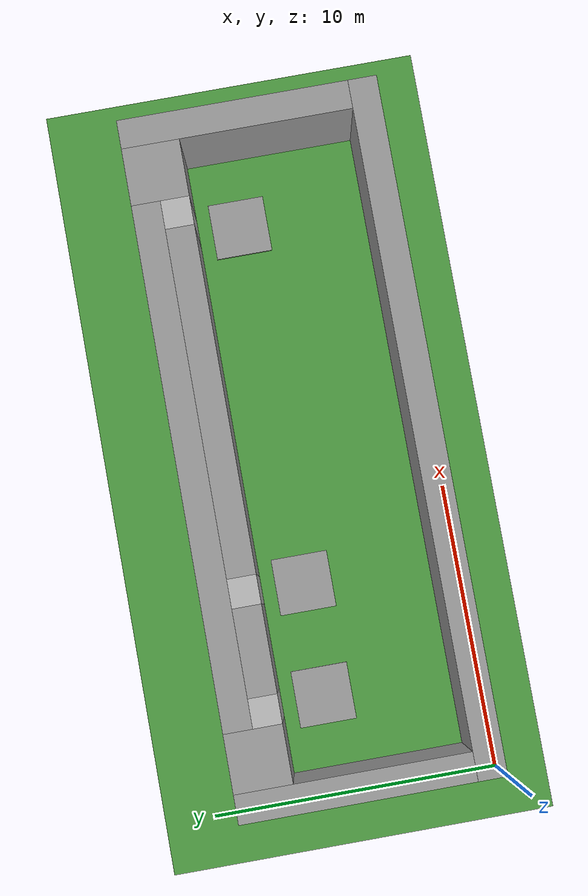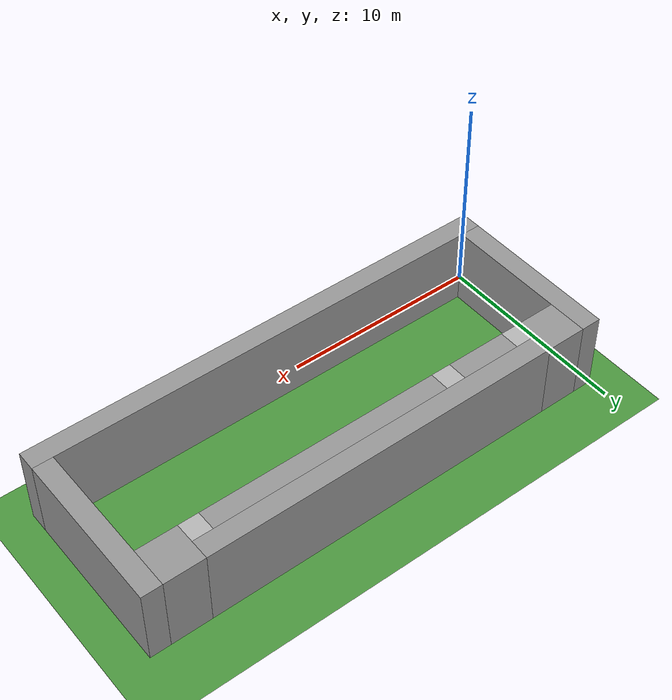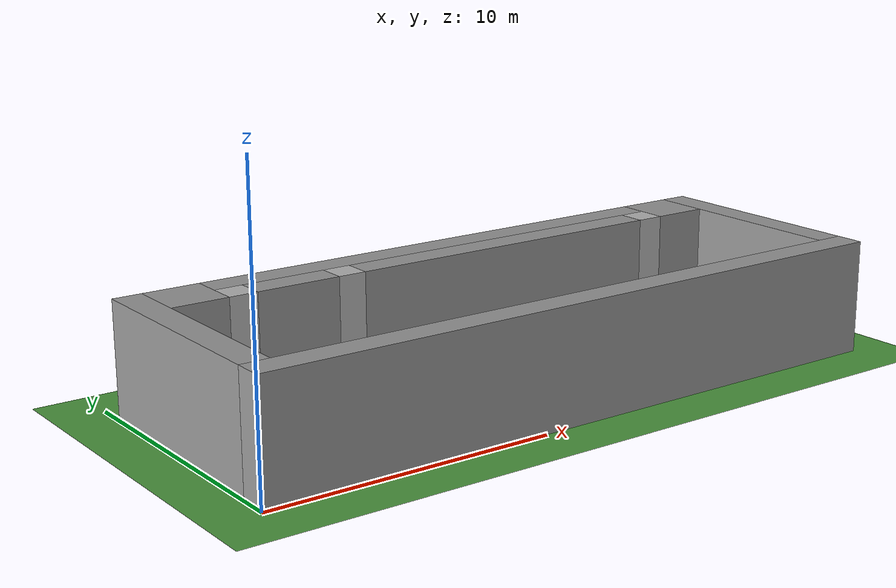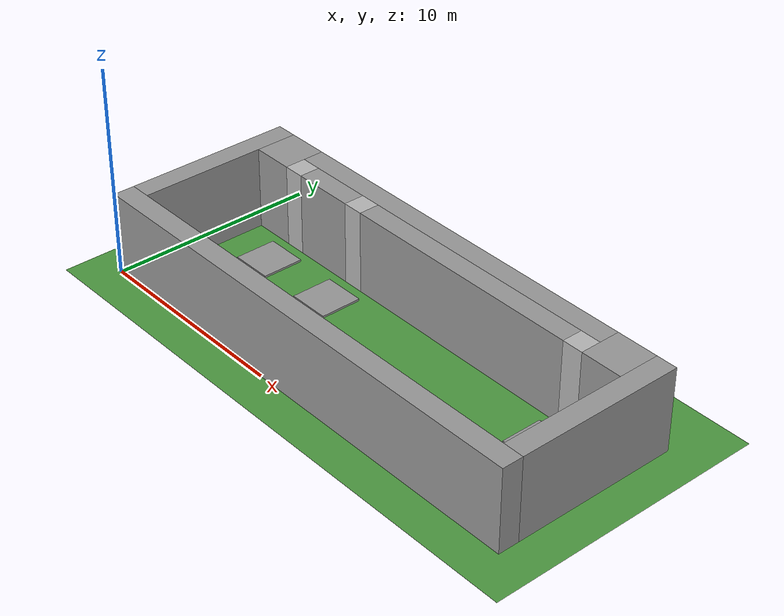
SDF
<sdf version="1.6">
 <world name="default">
  <light name="sun" type="directional">
   <pose>0 0 10 0 -0 0</pose>
   <diffuse>0.8 0.8 0.8 1</diffuse>
   <specular>0.1 0.1 0.1 1</specular>
   <attenuation>
    <range>1000</range>
    <constant>0.9</constant>
    <linear>0.01</linear>
    <quadratic>0.001</quadratic>
   </attenuation>
   <direction>-0.5 0.5 -1</direction>
  </light>
  <model name="ground_plane">
   <static>1</static>
   <link name="link">
    <collision name="collision">
     <geometry><plane><normal>0 0 1</normal><size>100 100</size></plane></geometry>
     <surface><friction><ode><mu>100</mu><mu2>50</mu2></ode></friction></surface>
    </collision>
    <visual name="visual">
     <cast_shadows>0</cast_shadows>
     <geometry><plane><normal>0 0 1</normal><size>100 100</size></plane></geometry>
     <material>
      <script><uri>file://media/materials/scripts/gazebo.material</uri><name>Gazebo/Grass</name></script>
     </material>
    </visual>
   </link>
  </model>
  <gravity>0 0 -9.8</gravity>
  <magnetic_field>6e-06 2.3e-05 -4.2e-05</magnetic_field>
  <atmosphere type="adiabatic"/>
  <physics name="default_physics" default="0" type="ode">
   <max_step_size>0.004</max_step_size>
   <real_time_factor>1</real_time_factor>
   <real_time_update_rate>250</real_time_update_rate>
  </physics>
  <scene><ambient>0.4 0.4 0.4 1</ambient><background>0.7 0.7 0.7 1</background><shadows>1</shadows></scene>
  <spherical_coordinates>
   <surface_model>EARTH_WGS84</surface_model>
   <latitude_deg>0</latitude_deg>
   <longitude_deg>0</longitude_deg>
   <elevation>0</elevation>
   <heading_deg>0</heading_deg>
  </spherical_coordinates>
  <model name="wall">
   <pose>12.000000 0.500000 2 0 0 0</pose>
   <static>1</static>
   <link name="wall-link">
    <collision name="collision"><geometry><box><size>24 1 4</size></box></geometry></collision>
    <visual name="visual">
     <geometry><box><size>24 1 4</size></box></geometry>
     <material>
      <script><name>Gazebo/Grey</name><uri>file://media/materials/scripts/gazebo.material</uri></script>
     </material>
    </visual>
    <gravity>0</gravity>
   </link>
  </model>
  <model name="wall">
   <pose>0.500000 5.000000 2 0 0 0</pose>
   <static>1</static>
   <link name="wall-link">
    <collision name="collision"><geometry><box><size>1 8 4</size></box></geometry></collision>
    <visual name="visual">
     <geometry><box><size>1 8 4</size></box></geometry>
     <material>
      <script><name>Gazebo/Grey</name><uri>file://media/materials/scripts/gazebo.material</uri></script>
     </material>
    </visual>
    <gravity>0</gravity>
   </link>
  </model>
  <model name="wall">
   <pose>23.500000 5.000000 2 0 0 0</pose>
   <static>1</static>
   <link name="wall-link">
    <collision name="collision"><geometry><box><size>1 8 4</size></box></geometry></collision>
    <visual name="visual">
     <geometry><box><size>1 8 4</size></box></geometry>
     <material>
      <script><name>Gazebo/Grey</name><uri>file://media/materials/scripts/gazebo.material</uri></script>
     </material>
    </visual>
    <gravity>0</gravity>
   </link>
  </model>
  <model name="wall">
   <pose>2.000000 8.000000 2 0 0 0</pose>
   <static>1</static>
   <link name="wall-link">
    <collision name="collision"><geometry><box><size>2 2 4</size></box></geometry></collision>
    <visual name="visual">
     <geometry><box><size>2 2 4</size></box></geometry>
     <material>
      <script><name>Gazebo/Grey</name><uri>file://media/materials/scripts/gazebo.material</uri></script>
     </material>
    </visual>
    <gravity>0</gravity>
   </link>
  </model>
  <model name="wall">
   <pose>5.500000 7.500000 2 0 0 0</pose>
   <static>1</static>
   <link name="wall-link">
    <collision name="collision"><geometry><box><size>3 1 4</size></box></geometry></collision>
    <visual name="visual">
     <geometry><box><size>3 1 4</size></box></geometry>
     <material>
      <script><name>Gazebo/Grey</name><uri>file://media/materials/scripts/gazebo.material</uri></script>
     </material>
    </visual>
    <gravity>0</gravity>
   </link>
  </model>
  <model name="wall">
   <pose>14.000000 7.500000 2 0 0 0</pose>
   <static>1</static>
   <link name="wall-link">
    <collision name="collision"><geometry><box><size>12 1 4</size></box></geometry></collision>
    <visual name="visual">
     <geometry><box><size>12 1 4</size></box></geometry>
     <material>
      <script><name>Gazebo/Grey</name><uri>file://media/materials/scripts/gazebo.material</uri></script>
     </material>
    </visual>
    <gravity>0</gravity>
   </link>
  </model>
  <model name="wall">
   <pose>22.000000 8.000000 2 0 0 0</pose>
   <static>1</static>
   <link name="wall-link">
    <collision name="collision"><geometry><box><size>2 2 4</size></box></geometry></collision>
    <visual name="visual">
     <geometry><box><size>2 2 4</size></box></geometry>
     <material>
      <script><name>Gazebo/Grey</name><uri>file://media/materials/scripts/gazebo.material</uri></script>
     </material>
    </visual>
    <gravity>0</gravity>
   </link>
  </model>
  <model name="wall">
   <pose>12.000000 8.500000 2 0 0 0</pose>
   <static>1</static>
   <link name="wall-link">
    <collision name="collision"><geometry><box><size>18 1 4</size></box></geometry></collision>
    <visual name="visual">
     <geometry><box><size>18 1 4</size></box></geometry>
     <material>
      <script><name>Gazebo/Grey</name><uri>file://media/materials/scripts/gazebo.material</uri></script>
     </material>
    </visual>
    <gravity>0</gravity>
   </link>
  </model>
  <model name="goal">
   <pose>3.5 5.5 0.05 0 -0 0</pose>
   <static>1</static>
   <link name="link">
    <collision name="collision"><geometry><box><size>2.0 2.0 0.1</size></box></geometry></collision>
    <visual name="visual">
     <geometry><box><size>2.0 2.0 0.1</size></box></geometry>
     <material>
      <script><name>Gazebo/Grey</name><uri>file://media/materials/scripts/gazebo.material</uri></script>
     </material>
    </visual>
   </link>
  </model>
  <model name="goal">
   <pose>7.5 5.5 0.05 0 -0 0</pose>
   <static>1</static>
   <link name="link">
    <collision name="collision"><geometry><box><size>2.0 2.0 0.1</size></box></geometry></collision>
    <visual name="visual">
     <geometry><box><size>2.0 2.0 0.1</size></box></geometry>
     <material>
      <script><name>Gazebo/Grey</name><uri>file://media/materials/scripts/gazebo.material</uri></script>
     </material>
    </visual>
   </link>
  </model>
  <model name="goal">
   <pose>20.5 5.5 0.05 0 -0 0</pose>
   <static>1</static>
   <link name="link">
    <collision name="collision"><geometry><box><size>2.0 2.0 0.1</size></box></geometry></collision>
    <visual name="visual">
     <geometry><box><size>2.0 2.0 0.1</size></box></geometry>
     <material>
      <script><name>Gazebo/Grey</name><uri>file://media/materials/scripts/gazebo.material</uri></script>
     </material>
    </visual>
   </link>
  </model>
  <include><uri>model://numberbox1</uri><pose>3.5 7.5 2 0 -0 0</pose></include>
  <include><uri>model://numberbox2</uri><pose>7.5 7.5 2 0 -0 0</pose></include>
  <include><uri>model://numberbox7</uri><pose>20.5 7.5 2 0 -0 0</pose></include>
 </world>
</sdf>

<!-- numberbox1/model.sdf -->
<sdf version="1.5">
  <model name="box">
    <static>false</static>
    <link name="base">
      <inertial>
        <mass>1</mass>
        <inertia>
          <ixx>0.166667</ixx>
          <ixy>0</ixy>
          <ixz>0</ixz>
          <iyy>0.166667</iyy>
          <iyz>0</iyz>
          <izz>0.166667</izz>
        </inertia>
      </inertial>
      <collision name="collision">
        <geometry>
            <box>
                <size>1 1 4</size>
            </box>
        </geometry>
      </collision>
      <visual name="visual">
        <geometry>
          <mesh>
            <uri>model://numberbox/meshes/number1.dae</uri>
          </mesh>
        </geometry>
      </visual>
    </link>
  </model>
</sdf>

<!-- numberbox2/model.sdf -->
<sdf version="1.5">
  <model name="box">
    <static>false</static>
    <link name="base">
      <inertial>
        <mass>1</mass>
        <inertia>
          <ixx>0.166667</ixx>
          <ixy>0</ixy>
          <ixz>0</ixz>
          <iyy>0.166667</iyy>
          <iyz>0</iyz>
          <izz>0.166667</izz>
        </inertia>
      </inertial>
      <collision name="collision">
        <geometry>
            <box>
                <size>1 1 4</size>
            </box>
        </geometry>
      </collision>
      <visual name="visual">
        <geometry>
          <mesh>
            <uri>model://numberbox/meshes/number2.dae</uri>
          </mesh>
        </geometry>
      </visual>
    </link>
  </model>
</sdf>

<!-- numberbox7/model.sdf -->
<sdf version="1.5">
  <model name="box">
    <static>false</static>
    <link name="base">
      <inertial>
        <mass>1</mass>
        <inertia>
          <ixx>0.166667</ixx>
          <ixy>0</ixy>
          <ixz>0</ixz>
          <iyy>0.166667</iyy>
          <iyz>0</iyz>
          <izz>0.166667</izz>
        </inertia>
      </inertial>
      <collision name="collision">
        <geometry>
            <box>
                <size>1 1 4</size>
            </box>
        </geometry>
      </collision>
      <visual name="visual">
        <geometry>
          <mesh>
            <uri>model://numberbox/meshes/number7.dae</uri>
          </mesh>
        </geometry>
      </visual>
    </link>
  </model>
</sdf>
